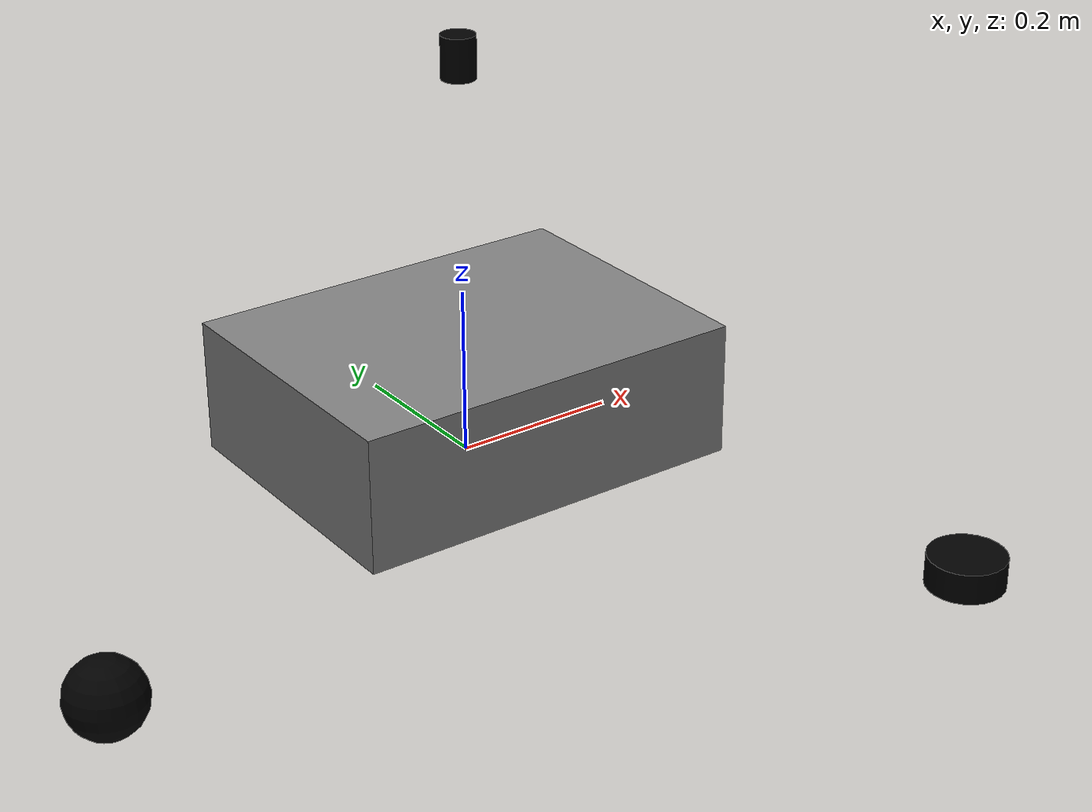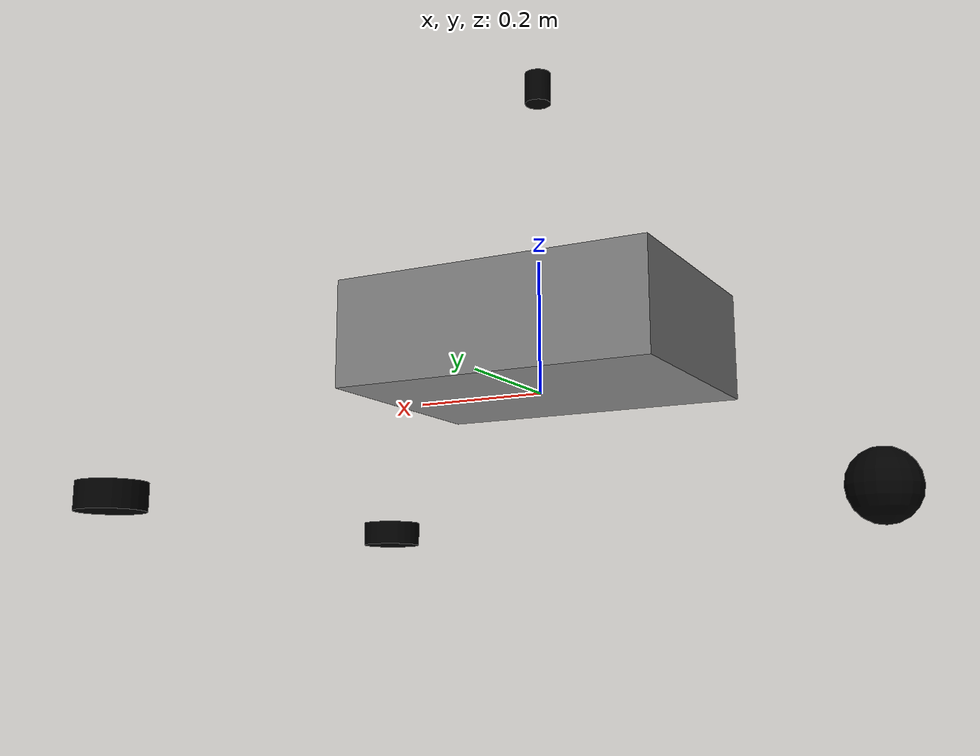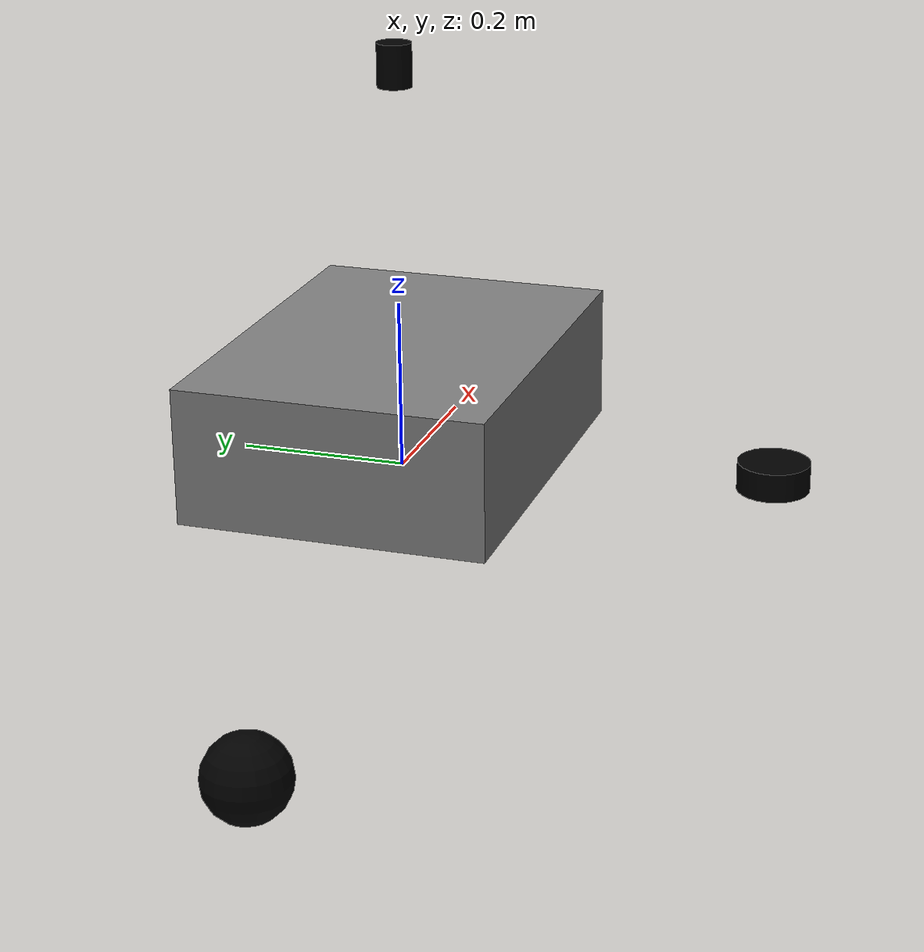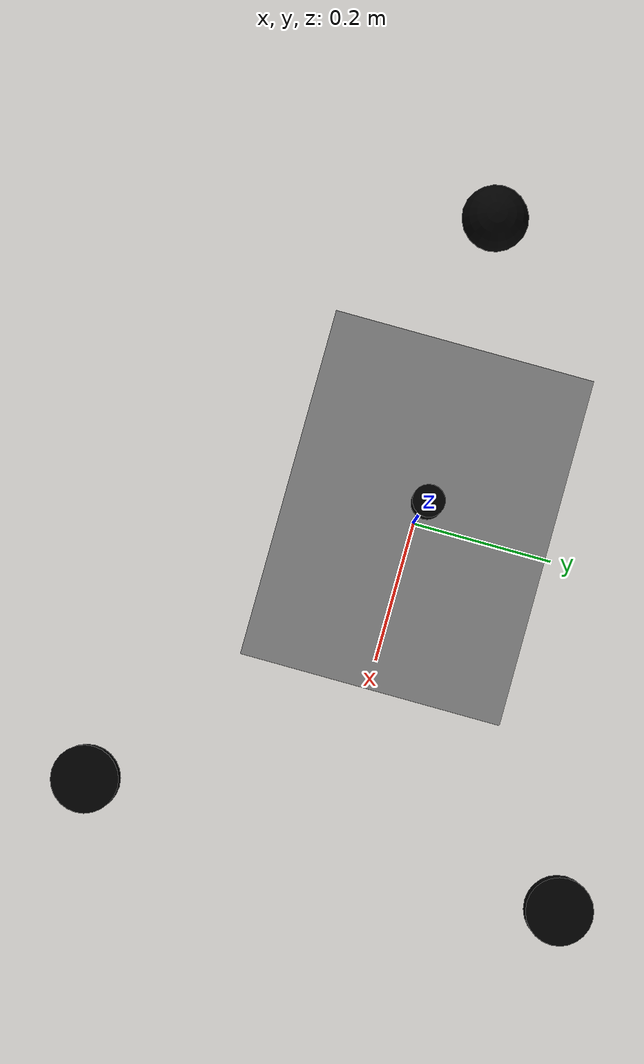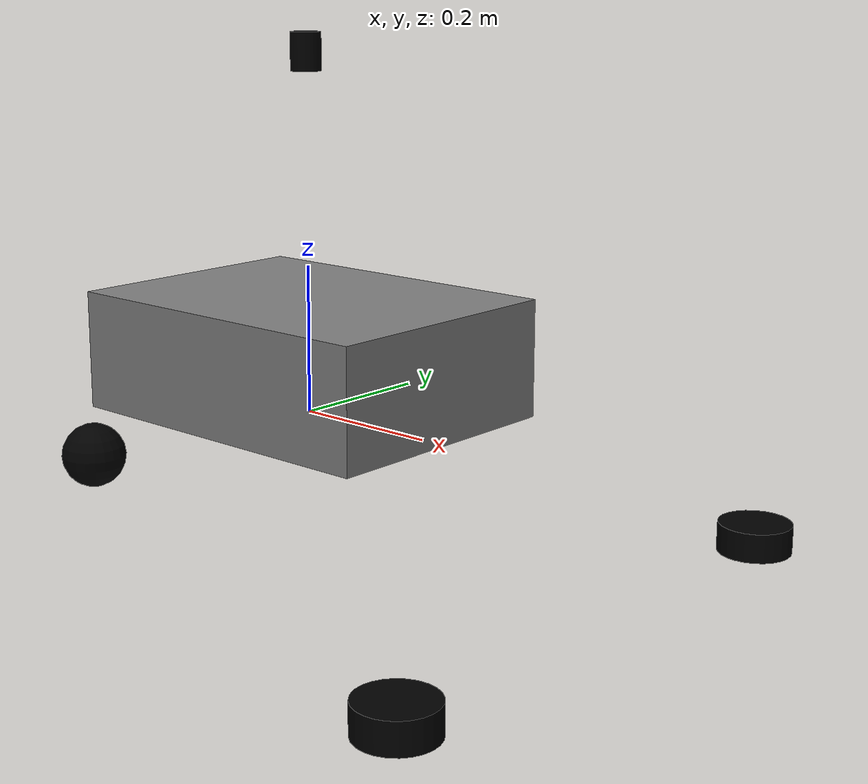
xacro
<robot name="my_robot">

  <!-- Base link -->
  <link name="base_link">
    <visual>
      <origin xyz="0 0 0.08"/>
      <geometry>
        <box size="0.48 0.36 0.16"/>
      </geometry>
      <material name="grey">
        <color rgba="0.5 0.5 0.5 1"/>
      </material>
    </visual>
    <collision>
      <origin xyz="0 0 0.08"/>
      <geometry>
        <box size="0.48 0.36 0.16"/>
      </geometry>
    </collision>
    <inertial>
      <mass value="5.0"/>
      <origin xyz="0 0 0.08" rpy="0 0 0"/>
      <inertia ixx="0.1" ixy="0" ixz="0" iyy="0.1" iyz="0" izz="0.1"/>
    </inertial>
  </link>

  <!-- Front left wheel -->
  <link name="front_left_wheel">
    <visual>
      <origin xyz="0.24 0.18 -0.08"/>
      <geometry>
        <cylinder length="0.04" radius="0.05"/>
      </geometry>
      <material name="black">
        <color rgba="0 0 0 1"/>
      </material>
    </visual>
    <collision>
      <origin xyz="0.24 0.18 -0.08"/>
      <geometry>
        <cylinder length="0.04" radius="0.05"/>
      </geometry>
    </collision>
    <inertial>
      <mass value="1.0"/>
      <origin xyz="0.24 0.18 -0.08" rpy="0 0 0"/>
      <inertia ixx="0.005" ixy="0" ixz="0" iyy="0.005" iyz="0" izz="0.005"/>
    </inertial>
  </link>

  <!-- Front right wheel -->
  <link name="front_right_wheel">
    <visual>
      <origin xyz="0.24 -0.18 -0.08"/>
      <geometry>
        <cylinder length="0.04" radius="0.05"/>
      </geometry>
      <material name="black">
        <color rgba="0 0 0 1"/>
      </material>
    </visual>
    <collision>
      <origin xyz="0.24 -0.18 -0.08"/>
      <geometry>
        <cylinder length="0.04" radius="0.05"/>
      </geometry>
    </collision>
    <inertial>
      <mass value="1.0"/>
      <origin xyz="0.24 -0.18 -0.08" rpy="0 0 0"/>
      <inertia ixx="0.005" ixy="0" ixz="0" iyy="0.005" iyz="0" izz="0.005"/>
    </inertial>
  </link>

  <!-- Caster wheel -->
  <link name="caster_wheel">
    <visual>
      <origin xyz="-0.24 0 -0.08"/>
      <geometry>
        <sphere radius="0.05"/>
      </geometry>
      <material name="black">
        <color rgba="0 0 0 1"/>
      </material>
    </visual>
    <collision>
      <origin xyz="-0.24 0 -0.08"/>
      <geometry>
        <sphere radius="0.05"/>
      </geometry>
    </collision>
    <inertial>
      <mass value="0.5"/>
      <origin xyz="-0.24 0 -0.08" rpy="0 0 0"/>
      <inertia ixx="0.0025" ixy="0" ixz="0" iyy="0.0025" iyz="0" izz="0.0025"/>
    </inertial>
  </link>

  <!-- LiDAR -->
  <link name="lidar">
    <visual>
      <origin xyz="0 0 0.24"/>
      <geometry>
        <cylinder length="0.05" radius="0.02"/>
      </geometry>
      <material name="black">
        <color rgba="0 0 0 1"/>
      </material>
    </visual>
    <collision>
      <origin xyz="0 0 0.24"/>
      <geometry>
        <cylinder length="0.05" radius="0.02"/>
      </geometry>
    </collision>
    <inertial>
      <mass value="0.2"/>
      <origin xyz="0 0 0.24" rpy="0 0 0"/>
      <inertia ixx="0.0005" ixy="0" ixz="0" iyy="0.0005" iyz="0" izz="0.0005"/>
    </inertial>
  </link>

  <!-- Joints -->

  <!-- Joint base_link to front_left_wheel -->
  <joint name="base_to_front_left_wheel" type="continuous">
    <parent link="base_link"/>
    <child link="front_left_wheel"/>
    <origin xyz="0.24 0.18 -0.08" rpy="0 0 0"/>
    <axis xyz="0 0 1"/>
  </joint>

  <!-- Joint base_link to front_right_wheel -->
  <joint name="base_to_front_right_wheel" type="continuous">
    <parent link="base_link"/>
    <child link="front_right_wheel"/>
    <origin xyz="0.24 -0.18 -0.08" rpy="0 0 0"/>
    <axis xyz="0 0 1"/>
  </joint>

  <!-- Joint base_link to caster_wheel -->
  <joint name="base_to_caster_wheel" type="fixed">
    <parent link="base_link"/>
    <child link="caster_wheel"/>
    <origin xyz="-0.24 0 -0.08" rpy="0 0 0"/>
  </joint>

  <!-- Joint base_link to lidar -->
  <joint name="base_to_lidar" type="fixed">
    <parent link="base_link"/>
    <child link="lidar"/>
    <origin xyz="0 0 0.24" rpy="0 0 0"/>
  </joint>

</robot>
